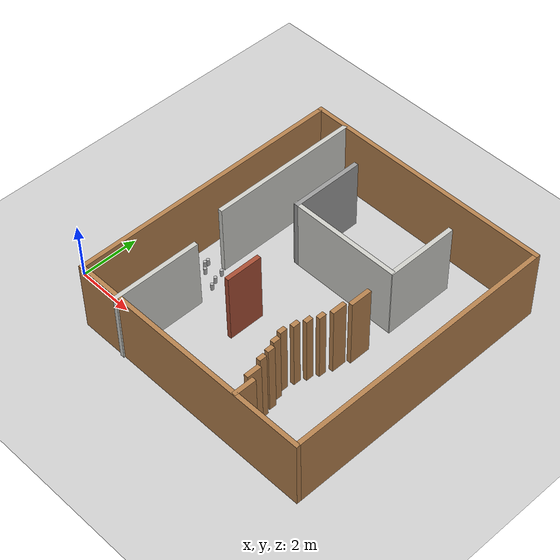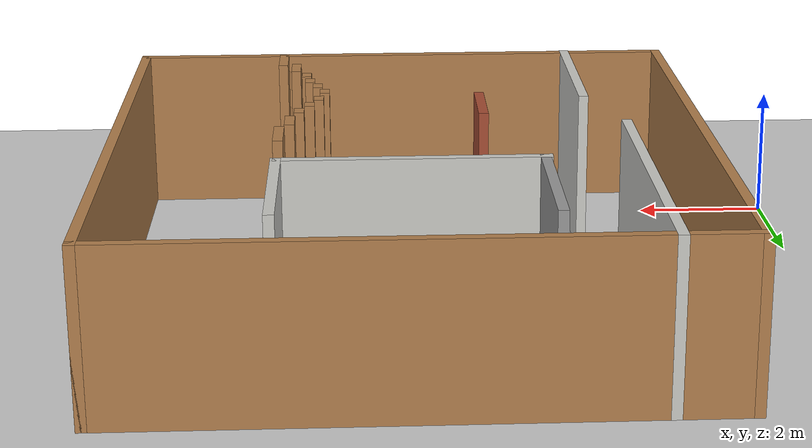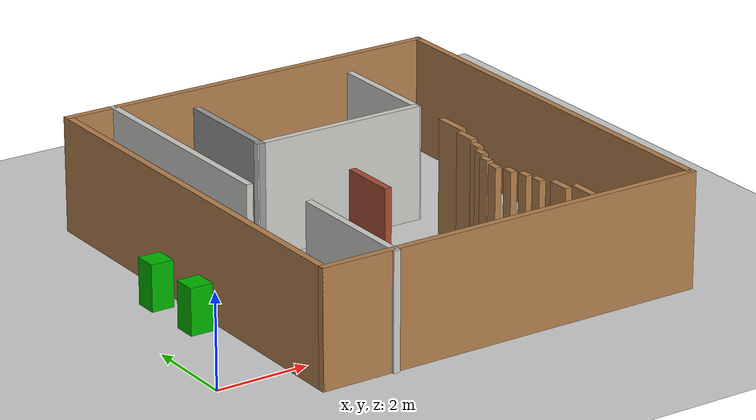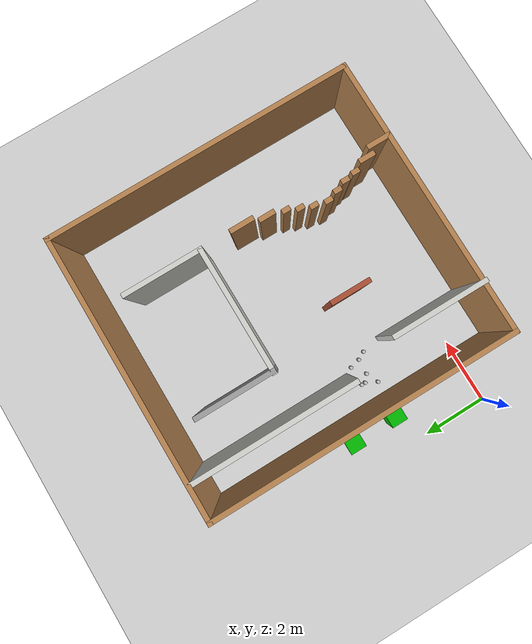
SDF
<sdf version="1.6">
 <world name="default">
  <light name="sun" type="directional">
   <pose>0 0 10 0 -0 0</pose>
   <diffuse>0.8 0.8 0.8 1</diffuse>
   <specular>0.2 0.2 0.2 1</specular>
   <attenuation>
    <range>1000</range>
    <constant>0.9</constant>
    <linear>0.01</linear>
    <quadratic>0.001</quadratic>
   </attenuation>
   <direction>-0.5 0.1 -0.9</direction>
  </light>
  <model name="ground_plane">
   <static>1</static>
   <link name="link">
    <collision name="collision">
     <geometry><plane><normal>0 0 1</normal><size>100 100</size></plane></geometry>
     <surface><friction><ode><mu>100</mu><mu2>50</mu2></ode></friction></surface>
    </collision>
    <visual name="visual">
     <cast_shadows>0</cast_shadows>
     <geometry><plane><normal>0 0 1</normal><size>100 100</size></plane></geometry>
     <material>
      <script><uri>file://media/materials/scripts/gazebo.material</uri><name>Gazebo/Grey</name></script>
     </material>
    </visual>
   </link>
  </model>
  <gravity>0 0 -9.8</gravity>
  <magnetic_field>6e-06 2.3e-05 -4.2e-05</magnetic_field>
  <atmosphere type="adiabatic"/>
  <physics name="default_physics" default="0" type="ode">
   <max_step_size>0.001</max_step_size>
   <real_time_factor>1</real_time_factor>
   <real_time_update_rate>1000</real_time_update_rate>
  </physics>
  <scene><ambient>0.4 0.4 0.4 1</ambient><background>0.7 0.7 0.7 1</background><shadows>1</shadows></scene>
  <audio><device>default</device></audio>
  <spherical_coordinates>
   <surface_model>EARTH_WGS84</surface_model>
   <latitude_deg>0</latitude_deg>
   <longitude_deg>0</longitude_deg>
   <elevation>0</elevation>
   <heading_deg>0</heading_deg>
  </spherical_coordinates>
  <model name="comp4034_environment">
   <pose>5.97351 3.57955 0 0 -0 0</pose>
   <link name="Wall_1">
    <collision name="Wall_1_Collision">
     <geometry><box><size>8.75 0.15 2.5</size></box></geometry>
     <pose>0 0 1.25 0 -0 0</pose>
    </collision>
    <visual name="Wall_1_Visual">
     <pose>0 0 1.25 0 -0 0</pose>
     <geometry><box><size>8.75 0.15 2.5</size></box></geometry>
     <material>
      <script><uri>file://media/materials/scripts/gazebo.material</uri><name>Gazebo/Wood</name></script>
      <ambient>1 1 1 1</ambient>
     </material>
     <meta><layer>0</layer></meta>
    </visual>
    <pose>-0 -4.67766 0 0 -0 0</pose>
   </link>
   <link name="Wall_16">
    <collision name="Wall_16_Collision">
     <geometry><box><size>0.25 0.15 2.5</size></box></geometry>
     <pose>0 0 1.25 0 -0 0</pose>
    </collision>
    <visual name="Wall_16_Visual">
     <pose>0 0 1.25 0 -0 0</pose>
     <geometry><box><size>0.25 0.15 2.5</size></box></geometry>
     <material>
      <script><uri>file://media/materials/scripts/gazebo.material</uri><name>Gazebo/Wood</name></script>
      <ambient>1 1 1 1</ambient>
     </material>
     <meta><layer>0</layer></meta>
    </visual>
    <pose>1.39958 -2.65835 0 0 -0 1.5708</pose>
   </link>
   <link name="Wall_18">
    <collision name="Wall_18_Collision">
     <geometry><box><size>0.25 0.15 2.5</size></box></geometry>
     <pose>0 0 1.25 0 -0 0</pose>
    </collision>
    <visual name="Wall_18_Visual">
     <pose>0 0 1.25 0 -0 0</pose>
     <geometry><box><size>0.25 0.15 2.5</size></box></geometry>
     <material>
      <script><uri>file://media/materials/scripts/gazebo.material</uri><name>Gazebo/Wood</name></script>
      <ambient>1 1 1 1</ambient>
     </material>
     <meta><layer>0</layer></meta>
    </visual>
    <pose>1.28384 -2.30376 0 0 -0 1.5708</pose>
   </link>
   <link name="Wall_21">
    <collision name="Wall_21_Collision">
     <geometry><box><size>0.25 0.15 2.5</size></box></geometry>
     <pose>0 0 1.25 0 -0 0</pose>
    </collision>
    <visual name="Wall_21_Visual">
     <pose>0 0 1.25 0 -0 0</pose>
     <geometry><box><size>0.25 0.15 2.5</size></box></geometry>
     <material>
      <script><uri>file://media/materials/scripts/gazebo.material</uri><name>Gazebo/Wood</name></script>
      <ambient>1 1 1 1</ambient>
     </material>
     <meta><layer>0</layer></meta>
    </visual>
    <pose>1.36975 -1.89289 0 0 -0 1.5708</pose>
   </link>
   <link name="Wall_23">
    <collision name="Wall_23_Collision">
     <geometry><box><size>0.25 0.15 2.5</size></box></geometry>
     <pose>0 0 1.25 0 -0 0</pose>
    </collision>
    <visual name="Wall_23_Visual">
     <pose>0 0 1.25 0 -0 0</pose>
     <geometry><box><size>0.25 0.15 2.5</size></box></geometry>
     <material>
      <script><uri>file://media/materials/scripts/gazebo.material</uri><name>Gazebo/Wood</name></script>
      <ambient>1 1 1 1</ambient>
     </material>
     <meta><layer>0</layer></meta>
    </visual>
    <pose>1.50857 -1.53493 0 0 -0 1.5708</pose>
   </link>
   <link name="Wall_25">
    <collision name="Wall_25_Collision">
     <geometry><box><size>0.25 0.15 2.5</size></box></geometry>
     <pose>0 0 1.25 0 -0 0</pose>
    </collision>
    <visual name="Wall_25_Visual">
     <pose>0 0 1.25 0 -0 0</pose>
     <geometry><box><size>0.25 0.15 2.5</size></box></geometry>
     <material>
      <script><uri>file://media/materials/scripts/gazebo.material</uri><name>Gazebo/Wood</name></script>
      <ambient>1 1 1 1</ambient>
     </material>
     <meta><layer>0</layer></meta>
    </visual>
    <pose>1.65732 -1.18034 0 0 -0 1.5708</pose>
   </link>
   <link name="Wall_27">
    <collision name="Wall_27_Collision">
     <geometry><box><size>0.5 0.15 2.5</size></box></geometry>
     <pose>0 0 1.25 0 -0 0</pose>
    </collision>
    <visual name="Wall_27_Visual">
     <pose>0 0 1.25 0 -0 0</pose>
     <geometry><box><size>0.5 0.15 2.5</size></box></geometry>
     <material>
      <script><uri>file://media/materials/scripts/gazebo.material</uri><name>Gazebo/Wood</name></script>
      <ambient>1 1 1 1</ambient>
     </material>
     <meta><layer>0</layer></meta>
    </visual>
    <pose>1.78619 -0.651034 0 0 -0 1.5708</pose>
   </link>
   <link name="Wall_3">
    <collision name="Wall_3_Collision">
     <geometry><box><size>9.5529 0.15 2.5</size></box></geometry>
     <pose>0 0 1.25 0 -0 0</pose>
    </collision>
    <visual name="Wall_3_Visual">
     <pose>0 0 1.25 0 -0 0</pose>
     <geometry><box><size>9.5529 0.15 2.5</size></box></geometry>
     <material>
      <script><uri>file://media/materials/scripts/gazebo.material</uri><name>Gazebo/Wood</name></script>
      <ambient>1 1 1 1</ambient>
     </material>
     <meta><layer>0</layer></meta>
    </visual>
    <pose>-4.3 0.023792 0 0 -0 1.5708</pose>
   </link>
   <link name="Wall_30">
    <collision name="Wall_30_Collision">
     <geometry><box><size>0.75 0.15 2.5</size></box></geometry>
     <pose>0 0 1.25 0 -0 0</pose>
    </collision>
    <visual name="Wall_30_Visual">
     <pose>0 0 1.25 0 -0 0</pose>
     <geometry><box><size>0.75 0.15 2.5</size></box></geometry>
     <material>
      <script><uri>file://media/materials/scripts/gazebo.material</uri><name>Gazebo/Wood</name></script>
      <ambient>1 1 1 1</ambient>
     </material>
     <meta><layer>0</layer></meta>
    </visual>
    <pose>1.92912 0.051937 0 0 -0 1.5708</pose>
   </link>
   <link name="Wall_32">
    <collision name="Wall_32_Collision">
     <geometry><box><size>2.5 0.15 2.5</size></box></geometry>
     <pose>0 0 1.25 0 -0 0</pose>
    </collision>
    <visual name="Wall_32_Visual">
     <pose>0 0 1.25 0 -0 0</pose>
     <geometry><box><size>2.5 0.15 2.5</size></box></geometry>
     <material>
      <script><uri>file://media/materials/scripts/gazebo.material</uri><name>Gazebo/CeilingTiled</name></script>
      <ambient>0.760784 0.662745 0.627451 1</ambient>
     </material>
     <meta><layer>0</layer></meta>
    </visual>
    <pose>1.9255 2.52077 0 0 -0 1.5708</pose>
   </link>
   <link name="Wall_34">
    <collision name="Wall_34_Collision">
     <geometry><box><size>3.92584 0.15 2.5</size></box></geometry>
     <pose>0 0 1.25 0 -0 0</pose>
    </collision>
    <visual name="Wall_34_Visual">
     <pose>0 0 1.25 0 -0 0</pose>
     <geometry><box><size>3.92584 0.15 2.5</size></box></geometry>
     <material>
      <script><uri>file://media/materials/scripts/gazebo.material</uri><name>Gazebo/CeilingTiled</name></script>
      <ambient>0.760784 0.662745 0.627451 1</ambient>
     </material>
     <meta><layer>0</layer></meta>
    </visual>
    <pose>0.007157 1.34577 0 0 -0 3.14159</pose>
   </link>
   <link name="Wall_4">
    <collision name="Wall_4_Collision">
     <geometry><box><size>8.75 0.15 2.5</size></box></geometry>
     <pose>0 0 1.25 0 -0 0</pose>
    </collision>
    <visual name="Wall_4_Visual">
     <pose>0 0 1.25 0 -0 0</pose>
     <geometry><box><size>8.75 0.15 2.5</size></box></geometry>
     <material>
      <script><uri>file://media/materials/scripts/gazebo.material</uri><name>Gazebo/Wood</name></script>
      <ambient>1 1 1 1</ambient>
     </material>
     <meta><layer>0</layer></meta>
    </visual>
    <pose>-0 4.72524 0 0 -0 0</pose>
   </link>
   <link name="Wall_40">
    <collision name="Wall_40_Collision">
     <geometry><box><size>1.25 0.15 2.5</size></box></geometry>
     <pose>0 0 1.25 0 -0 0</pose>
    </collision>
    <visual name="Wall_40_Visual">
     <pose>0 0 1.25 0 -0 0</pose>
     <geometry><box><size>1.25 0.15 2.5</size></box></geometry>
     <material>
      <script><uri>file://media/materials/scripts/gazebo.material</uri><name>Gazebo/Bricks</name></script>
      <ambient>1 1 1 1</ambient>
     </material>
     <meta><layer>0</layer></meta>
    </visual>
    <pose>-1.12606 -1.50275 0 0 -0 -1.5708</pose>
   </link>
   <link name="Wall_45">
    <collision name="Wall_45_Collision">
     <geometry><box><size>0.5 0.15 2.5</size></box></geometry>
     <pose>0 0 1.25 0 -0 0</pose>
    </collision>
    <visual name="Wall_45_Visual">
     <pose>0 0 1.25 0 -0 0</pose>
     <geometry><box><size>0.5 0.15 2.5</size></box></geometry>
     <material>
      <script><uri>file://media/materials/scripts/gazebo.material</uri><name>Gazebo/Wood</name></script>
      <ambient>1 1 1 1</ambient>
     </material>
     <meta><layer>0</layer></meta>
    </visual>
    <pose>1.76668 -3.82995 0 0 -0 1.5708</pose>
   </link>
   <link name="Wall_5">
    <collision name="Wall_5_Collision">
     <geometry><box><size>9.5 0.15 2.5</size></box></geometry>
     <pose>0 0 1.25 0 -0 0</pose>
    </collision>
    <visual name="Wall_5_Visual">
     <pose>0 0 1.25 0 -0 0</pose>
     <geometry><box><size>9.5 0.15 2.5</size></box></geometry>
     <material>
      <script><uri>file://media/materials/scripts/gazebo.material</uri><name>Gazebo/Wood</name></script>
      <ambient>1 1 1 1</ambient>
     </material>
     <meta><layer>0</layer></meta>
    </visual>
    <pose>4.3 0.050242 0 0 -0 -1.5708</pose>
   </link>
   <link name="Wall_52">
    <collision name="Wall_52_Collision">
     <geometry><box><size>0.75 0.15 2.5</size></box></geometry>
     <pose>0 0 1.25 0 -0 0</pose>
    </collision>
    <visual name="Wall_52_Visual">
     <pose>0 0 1.25 0 -0 0</pose>
     <geometry><box><size>0.75 0.15 2.5</size></box></geometry>
     <material>
      <script><uri>file://media/materials/scripts/gazebo.material</uri><name>Gazebo/Wood</name></script>
      <ambient>1 1 1 1</ambient>
     </material>
     <meta><layer>0</layer></meta>
    </visual>
    <pose>1.98668 -4.35495 0 0 -0 1.5708</pose>
   </link>
   <link name="Wall_56">
    <collision name="Wall_56_Collision">
     <geometry><box><size>0.25 0.15 2.5</size></box></geometry>
     <pose>0 0 1.25 0 -0 0</pose>
    </collision>
    <visual name="Wall_56_Visual">
     <pose>0 0 1.25 0 -0 0</pose>
     <geometry><box><size>0.25 0.15 2.5</size></box></geometry>
     <material>
      <script><uri>file://media/materials/scripts/gazebo.material</uri><name>Gazebo/Wood</name></script>
      <ambient>1 1 1 1</ambient>
     </material>
     <meta><layer>0</layer></meta>
    </visual>
    <pose>1.52668 -2.98495 0 0 -0 -1.5708</pose>
   </link>
   <link name="Wall_58">
    <collision name="Wall_58_Collision">
     <geometry><box><size>0.25 0.15 2.5</size></box></geometry>
     <pose>0 0 1.25 0 -0 0</pose>
    </collision>
    <visual name="Wall_58_Visual">
     <pose>0 0 1.25 0 -0 0</pose>
     <geometry><box><size>0.25 0.15 2.5</size></box></geometry>
     <material>
      <script><uri>file://media/materials/scripts/gazebo.material</uri><name>Gazebo/Wood</name></script>
      <ambient>1 1 1 1</ambient>
     </material>
     <meta><layer>0</layer></meta>
    </visual>
    <pose>1.58668 -3.34495 0 0 -0 -1.5708</pose>
   </link>
   <link name="Wall_60">
    <collision name="Wall_60_Collision">
     <geometry><box><size>2.5 0.15 2.5</size></box></geometry>
     <pose>0 0 1.25 0 -0 0</pose>
    </collision>
    <visual name="Wall_60_Visual">
     <pose>0 0 1.25 0 -0 0</pose>
     <geometry><box><size>2.5 0.15 2.5</size></box></geometry>
     <material>
      <script><uri>file://media/materials/scripts/gazebo.material</uri><name>Gazebo/Grey</name></script>
      <ambient>1 1 1 1</ambient>
     </material>
     <meta><layer>0</layer></meta>
    </visual>
    <pose>-1.85035 2.52077 0 0 -0 1.5708</pose>
   </link>
   <link name="Wall_7">
    <collision name="Wall_7_Collision">
     <geometry><box><size>5.25 0.15 2.5</size></box></geometry>
     <pose>0 0 1.25 0 -0 0</pose>
    </collision>
    <visual name="Wall_7_Visual">
     <pose>0 0 1.25 0 -0 0</pose>
     <geometry><box><size>5.25 0.15 2.5</size></box></geometry>
     <material>
      <script><uri>file://media/materials/scripts/gazebo.material</uri><name>Gazebo/CeilingTiled</name></script>
      <ambient>0.760784 0.662745 0.627451 1</ambient>
     </material>
     <meta><layer>0</layer></meta>
    </visual>
    <pose>-3.23089 2.17626 0 0 -0 -1.5708</pose>
   </link>
   <link name="Wall_9">
    <collision name="Wall_9_Collision">
     <geometry><box><size>3 0.15 2.5</size></box></geometry>
     <pose>0 0 1.25 0 -0 0</pose>
    </collision>
    <visual name="Wall_9_Visual">
     <pose>0 0 1.25 0 -0 0</pose>
     <geometry><box><size>3 0.15 2.5</size></box></geometry>
     <material>
      <script><uri>file://media/materials/scripts/gazebo.material</uri><name>Gazebo/CeilingTiled</name></script>
      <ambient>0.760784 0.662745 0.627451 1</ambient>
     </material>
     <meta><layer>0</layer></meta>
    </visual>
    <pose>-2.74464 -3.30126 0 0 -0 1.5708</pose>
   </link>
   <static>1</static>
  </model>
  <model name="beer">
   <link name="link">
    <pose>0 0 0.115 0 -0 0</pose>
    <inertial>
     <mass>0.39</mass>
     <inertia><ixx>0.00058</ixx><ixy>0</ixy><ixz>0</ixz><iyy>0.00058</iyy><iyz>0</iyz><izz>0.00019</izz></inertia>
    </inertial>
    <collision name="collision">
     <geometry><cylinder><radius>0.055</radius><length>0.23</length></cylinder></geometry>
    </collision>
    <visual name="visual">
     <geometry><cylinder><radius>0.055</radius><length>0.23</length></cylinder></geometry>
     <material>
      <script>
       <uri>model://beer/materials/scripts</uri>
       <uri>model://beer/materials/textures</uri>
       <name>Beer/Diffuse</name>
      </script>
     </material>
    </visual>
   </link>
   <pose>2.29627 2.92534 -7e-06 -1e-06 -0 -2.5e-05</pose>
  </model>
  <model name="beer_0">
   <link name="link">
    <pose>0 0 0.115 0 -0 0</pose>
    <inertial>
     <mass>0.39</mass>
     <inertia><ixx>0.00058</ixx><ixy>0</ixy><ixz>0</ixz><iyy>0.00058</iyy><iyz>0</iyz><izz>0.00019</izz></inertia>
    </inertial>
    <collision name="collision">
     <geometry><cylinder><radius>0.055</radius><length>0.23</length></cylinder></geometry>
    </collision>
    <visual name="visual">
     <geometry><cylinder><radius>0.055</radius><length>0.23</length></cylinder></geometry>
     <material>
      <script>
       <uri>model://beer/materials/scripts</uri>
       <uri>model://beer/materials/textures</uri>
       <name>Beer/Diffuse</name>
      </script>
     </material>
    </visual>
   </link>
   <pose>2.29627 2.79932 -7e-06 -1e-06 -0 -2.5e-05</pose>
  </model>
  <model name="beer_1">
   <link name="link">
    <pose>0 0 0.115 0 -0 0</pose>
    <inertial>
     <mass>0.39</mass>
     <inertia><ixx>0.00058</ixx><ixy>0</ixy><ixz>0</ixz><iyy>0.00058</iyy><iyz>0</iyz><izz>0.00019</izz></inertia>
    </inertial>
    <collision name="collision">
     <geometry><cylinder><radius>0.055</radius><length>0.23</length></cylinder></geometry>
    </collision>
    <visual name="visual">
     <geometry><cylinder><radius>0.055</radius><length>0.23</length></cylinder></geometry>
     <material>
      <script>
       <uri>model://beer/materials/scripts</uri>
       <uri>model://beer/materials/textures</uri>
       <name>Beer/Diffuse</name>
      </script>
     </material>
    </visual>
   </link>
   <pose>2.11447 2.45362 -7e-06 -1e-06 -0 -2.5e-05</pose>
  </model>
  <model name="beer_3">
   <link name="link">
    <pose>0 0 0.115 0 -0 0</pose>
    <inertial>
     <mass>0.39</mass>
     <inertia><ixx>0.00058</ixx><ixy>0</ixy><ixz>0</ixz><iyy>0.00058</iyy><iyz>0</iyz><izz>0.00019</izz></inertia>
    </inertial>
    <collision name="collision">
     <geometry><cylinder><radius>0.055</radius><length>0.23</length></cylinder></geometry>
    </collision>
    <visual name="visual">
     <geometry><cylinder><radius>0.055</radius><length>0.23</length></cylinder></geometry>
     <material>
      <script>
       <uri>model://beer/materials/scripts</uri>
       <uri>model://beer/materials/textures</uri>
       <name>Beer/Diffuse</name>
      </script>
     </material>
    </visual>
   </link>
   <pose>2.50304 2.62456 -7e-06 -1e-06 -0 -2.5e-05</pose>
  </model>
  <model name="beer_4">
   <link name="link">
    <pose>0 0 0.115 0 -0 0</pose>
    <inertial>
     <mass>0.39</mass>
     <inertia><ixx>0.00058</ixx><ixy>0</ixy><ixz>0</ixz><iyy>0.00058</iyy><iyz>0</iyz><izz>0.00019</izz></inertia>
    </inertial>
    <collision name="collision">
     <geometry><cylinder><radius>0.055</radius><length>0.23</length></cylinder></geometry>
    </collision>
    <visual name="visual">
     <geometry><cylinder><radius>0.055</radius><length>0.23</length></cylinder></geometry>
     <material>
      <script>
       <uri>model://beer/materials/scripts</uri>
       <uri>model://beer/materials/textures</uri>
       <name>Beer/Diffuse</name>
      </script>
     </material>
    </visual>
   </link>
   <pose>3.11529 2.34893 -7e-06 -1e-06 -0 -2.5e-05</pose>
  </model>
  <model name="beer_5">
   <link name="link">
    <pose>0 0 0.115 0 -0 0</pose>
    <inertial>
     <mass>0.39</mass>
     <inertia><ixx>0.00058</ixx><ixy>0</ixy><ixz>0</ixz><iyy>0.00058</iyy><iyz>0</iyz><izz>0.00019</izz></inertia>
    </inertial>
    <collision name="collision">
     <geometry><cylinder><radius>0.055</radius><length>0.23</length></cylinder></geometry>
    </collision>
    <visual name="visual">
     <geometry><cylinder><radius>0.055</radius><length>0.23</length></cylinder></geometry>
     <material>
      <script>
       <uri>model://beer/materials/scripts</uri>
       <uri>model://beer/materials/textures</uri>
       <name>Beer/Diffuse</name>
      </script>
     </material>
    </visual>
   </link>
   <pose>2.98284 2.59884 -7e-06 -1e-06 -0 -2.5e-05</pose>
  </model>
  <model name="beer_6">
   <link name="link">
    <pose>0 0 0.115 0 -0 0</pose>
    <inertial>
     <mass>0.39</mass>
     <inertia><ixx>0.00058</ixx><ixy>0</ixy><ixz>0</ixz><iyy>0.00058</iyy><iyz>0</iyz><izz>0.00019</izz></inertia>
    </inertial>
    <collision name="collision">
     <geometry><cylinder><radius>0.055</radius><length>0.23</length></cylinder></geometry>
    </collision>
    <visual name="visual">
     <geometry><cylinder><radius>0.055</radius><length>0.23</length></cylinder></geometry>
     <material>
      <script>
       <uri>model://beer/materials/scripts</uri>
       <uri>model://beer/materials/textures</uri>
       <name>Beer/Diffuse</name>
      </script>
     </material>
    </visual>
   </link>
   <pose>2.90108 2.92534 -7e-06 -1e-06 -0 1e-06</pose>
  </model>
  <model name="green_box">
   <link name="link_0">
    <inertial>
     <mass>0.248832</mass>
     <inertia>
      <ixx>0.0258912</ixx>
      <ixy>0</ixy>
      <ixz>0</ixz>
      <iyy>0.0259005</iyy>
      <iyz>0</iyz>
      <izz>0.0103197</izz>
     </inertia>
    </inertial>
    <visual name="visual">
     <geometry><box><size>0.499059 0.498611 1</size></box></geometry>
     <material>
      <lighting>1</lighting>
      <script><uri>file://media/materials/scripts/gazebo.material</uri><name>Gazebo/Grey</name></script>
      <shader type="vertex"><normal_map>__default__</normal_map></shader>
      <ambient>0 0.3 0 1</ambient>
      <diffuse>0 0.7 0 1</diffuse>
      <specular>0.01 0.01 0.01 1</specular>
      <emissive>0 0 0 1</emissive>
     </material>
    </visual>
    <collision name="collision">
     <geometry><box><size>0.499059 0.498611 1</size></box></geometry>
     <surface>
      <friction>
       <ode><mu>1</mu><mu2>1</mu2><fdir1>0 0 0</fdir1><slip1>0</slip1><slip2>0</slip2></ode>
       <torsional>
        <coefficient>1</coefficient>
        <patch_radius>0</patch_radius>
        <surface_radius>0</surface_radius>
        <use_patch_radius>1</use_patch_radius>
        <ode><slip>0</slip></ode>
       </torsional>
      </friction>
      <bounce><restitution_coefficient>0</restitution_coefficient><threshold>1e+06</threshold></bounce>
      <contact>
       <collide_without_contact>0</collide_without_contact>
       <collide_without_contact_bitmask>1</collide_without_contact_bitmask>
       <collide_bitmask>1</collide_bitmask>
       <ode>
        <soft_cfm>0</soft_cfm>
        <soft_erp>0.2</soft_erp>
        <kp>1e+13</kp>
        <kd>1</kd>
        <max_vel>0.01</max_vel>
        <min_depth>0</min_depth>
       </ode>
       <bullet>
        <split_impulse>1</split_impulse>
        <split_impulse_penetration_threshold>-0.01</split_impulse_penetration_threshold>
        <soft_cfm>0</soft_cfm>
        <soft_erp>0.2</soft_erp>
        <kp>1e+13</kp>
        <kd>1</kd>
       </bullet>
      </contact>
     </surface>
    </collision>
   </link>
   <static>0</static>
   <pose>1.1587 2.63465 0.500001 2e-06 -1e-06 -4.7e-05</pose>
  </model>
  <model name="green_box_clone">
   <link name="link_0">
    <inertial>
     <mass>0.248832</mass>
     <inertia>
      <ixx>0.0258912</ixx>
      <ixy>0</ixy>
      <ixz>0</ixz>
      <iyy>0.0259005</iyy>
      <iyz>0</iyz>
      <izz>0.0103197</izz>
     </inertia>
    </inertial>
    <visual name="visual">
     <geometry><box><size>0.499059 0.498611 1</size></box></geometry>
     <material>
      <lighting>1</lighting>
      <script><uri>file://media/materials/scripts/gazebo.material</uri><name>Gazebo/Grey</name></script>
      <shader type="vertex"><normal_map>__default__</normal_map></shader>
      <ambient>0 0.3 0 1</ambient>
      <diffuse>0 0.7 0 1</diffuse>
      <specular>0.01 0.01 0.01 1</specular>
      <emissive>0 0 0 1</emissive>
     </material>
    </visual>
    <collision name="collision">
     <geometry><box><size>0.499059 0.498611 1</size></box></geometry>
     <surface>
      <friction>
       <ode><mu>1</mu><mu2>1</mu2><fdir1>0 0 0</fdir1><slip1>0</slip1><slip2>0</slip2></ode>
       <torsional>
        <coefficient>1</coefficient>
        <patch_radius>0</patch_radius>
        <surface_radius>0</surface_radius>
        <use_patch_radius>1</use_patch_radius>
        <ode><slip>0</slip></ode>
       </torsional>
      </friction>
      <bounce><restitution_coefficient>0</restitution_coefficient><threshold>1e+06</threshold></bounce>
      <contact>
       <collide_without_contact>0</collide_without_contact>
       <collide_without_contact_bitmask>1</collide_without_contact_bitmask>
       <collide_bitmask>1</collide_bitmask>
       <ode>
        <soft_cfm>0</soft_cfm>
        <soft_erp>0.2</soft_erp>
        <kp>1e+13</kp>
        <kd>1</kd>
        <max_vel>0.01</max_vel>
        <min_depth>0</min_depth>
       </ode>
       <bullet>
        <split_impulse>1</split_impulse>
        <split_impulse_penetration_threshold>-0.01</split_impulse_penetration_threshold>
        <soft_cfm>0</soft_cfm>
        <soft_erp>0.2</soft_erp>
        <kp>1e+13</kp>
        <kd>1</kd>
       </bullet>
      </contact>
     </surface>
    </collision>
   </link>
   <static>0</static>
   <pose>1.13322 4.04545 0.499997 -6e-06 6e-06 0.000421</pose>
  </model>
 </world>
</sdf>
